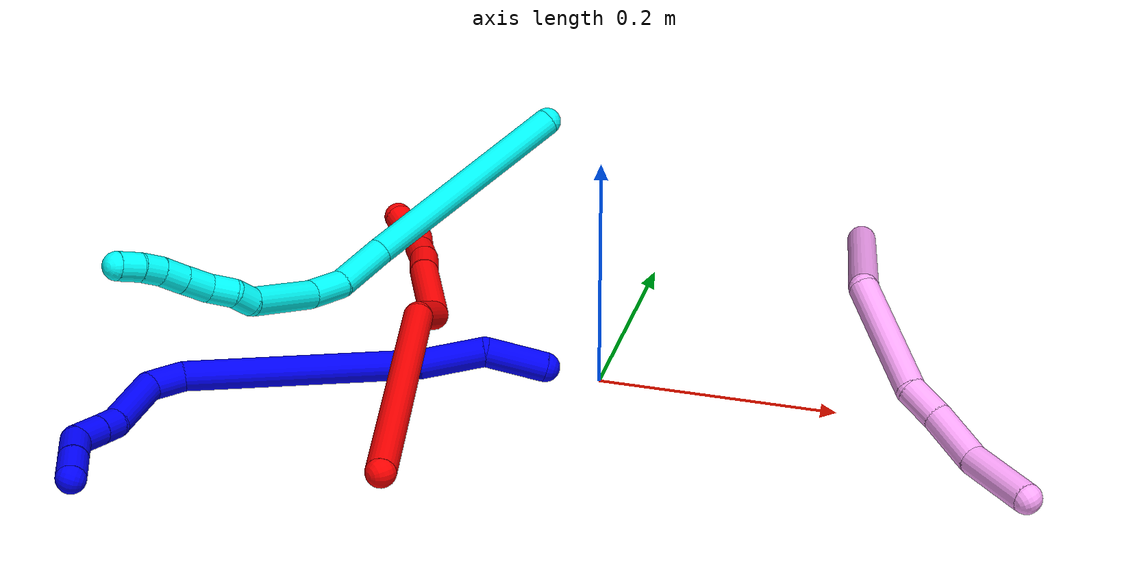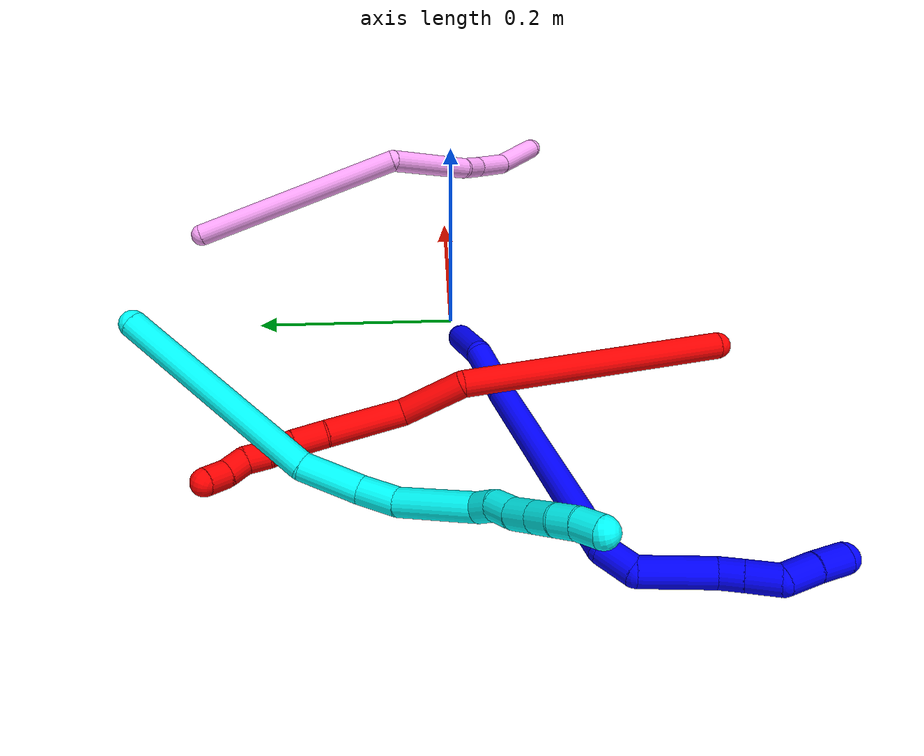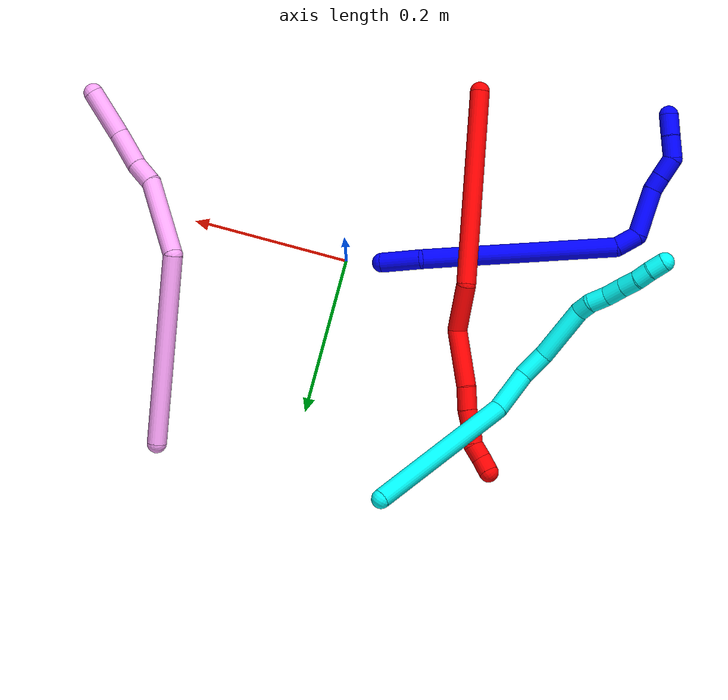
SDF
<sdf version="1.7">
 <world name="default">
  <plugin name="TubeGeneratorPlugin" filename="libtube_generator_plugin.so"/>
  <model name="photoneo_s_sensor">
   <static>1</static>
   <pose>0 0 2 1.57079 1.57079 3.14159</pose>
   <link name="link">
    <inertial><mass>0.1</mass></inertial>
    <sensor name="sensor" type="depth">
     <update_rate>30</update_rate>
     <camera>
      <horizontal_fov>1.22</horizontal_fov>
      <image><width>1920</width><height>1200</height><format>B8G8R8</format></image>
      <clip><near>0.1</near><far>4</far></clip>
      <depth_camera><output>points</output></depth_camera>
     </camera>
     <plugin name="camera_plugin" filename="libgazebo_ros_depth_camera.so">
      <baseline>0.2</baseline>
      <alwaysOn>1</alwaysOn>
      <updateRate>0.0</updateRate>
      <cameraName>camera_ir</cameraName>
      <imageTopicName>/camera/color/image_raw</imageTopicName>
      <cameraInfoTopicName>/camera/color/camera_info</cameraInfoTopicName>
      <depthImageTopicName>/camera/depth/image_raw</depthImageTopicName>
      <depthImageCameraInfoTopicName>/camera/depth/camera_info</depthImageCameraInfoTopicName>
      <pointCloudTopicName>/camera/depth/points</pointCloudTopicName>
      <frameName>fr_optical</frameName>
      <pointCloudCutoff>0.1</pointCloudCutoff>
      <pointCloudCutoffMax>2.0</pointCloudCutoffMax>
      <distortionK1>0</distortionK1>
      <distortionK2>0</distortionK2>
      <distortionK3>0</distortionK3>
      <distortionT1>0</distortionT1>
      <distortionT2>0</distortionT2>
      <CxPrime>0</CxPrime>
      <Cx>0</Cx>
      <Cy>0</Cy>
      <focalLength>0</focalLength>
      <hackBaseline>0</hackBaseline>
     </plugin>
    </sensor>
   </link>
  </model>
  <gravity>0 0 -9.8</gravity>
  <magnetic_field>6e-06 2.3e-05 -4.2e-05</magnetic_field>
  <atmosphere type="adiabatic"/>
  <physics name="default_physics" default="0" type="ode">
   <max_step_size>0.003</max_step_size>
   <real_time_factor>1</real_time_factor>
   <real_time_update_rate>1000</real_time_update_rate>
   <max_contacts>10000</max_contacts>
   <ode>
    <solver>
     <type>quick</type>
     <iters>100</iters>
     <sor>1.3</sor>
     <use_dynamic_moi_rescaling>0</use_dynamic_moi_rescaling>
    </solver>
    <constraints>
     <contact_max_correcting_vel>0</contact_max_correcting_vel>
     <contact_surface_layer>0.001</contact_surface_layer>
     <cfm>0</cfm>
     <erp>0.2</erp>
    </constraints>
   </ode>
  </physics>
  <scene><ambient>0.4 0.4 0.4 1</ambient><background>0.7 0.7 0.7 1</background><shadows>0</shadows></scene>
  <audio><device>default</device></audio>
  <spherical_coordinates>
   <surface_model>EARTH_WGS84</surface_model>
   <latitude_deg>0</latitude_deg>
   <longitude_deg>0</longitude_deg>
   <elevation>0</elevation>
   <heading_deg>0</heading_deg>
  </spherical_coordinates>
  <model name="bin">
   <static>1</static>
   <link name="bottom">
    <collision name="collision-bottom">
     <pose>0 0 -0.01 0 -0 0</pose>
     <geometry><box><size>0.8 0.6 0.02</size></box></geometry>
     <surface>
      <friction><ode><mu>100</mu><mu2>100</mu2></ode></friction>
      <contact><collide_bitmask>65535</collide_bitmask></contact>
     </surface>
    </collision>
   </link>
   <link name="west_wall">
    <collision name="collision-west_wall">
     <pose>-0.41 0 0.1 0 -0 0</pose>
     <geometry><box><size>0.02 0.6 0.2</size></box></geometry>
     <surface>
      <friction><ode><mu>100</mu><mu2>100</mu2></ode></friction>
      <contact><collide_bitmask>65535</collide_bitmask></contact>
     </surface>
    </collision>
   </link>
   <link name="east_wall">
    <collision name="collision-east_wall">
     <pose>0.41 0 0.1 0 -0 0</pose>
     <geometry><box><size>0.02 0.6 0.2</size></box></geometry>
     <surface>
      <friction><ode><mu>100</mu><mu2>100</mu2></ode></friction>
      <contact><collide_bitmask>65535</collide_bitmask></contact>
     </surface>
    </collision>
   </link>
   <link name="south_wall">
    <collision name="collision-south_wall">
     <pose>0 -0.31 0.1 0 -0 0</pose>
     <geometry><box><size>0.8 0.02 0.2</size></box></geometry>
     <surface>
      <friction><ode><mu>100</mu><mu2>100</mu2></ode></friction>
      <contact><collide_bitmask>65535</collide_bitmask></contact>
     </surface>
    </collision>
   </link>
   <link name="north_wall">
    <collision name="collision-north_wall">
     <pose>0 0.31 0.1 0 -0 0</pose>
     <geometry><box><size>0.8 0.02 0.2</size></box></geometry>
     <surface>
      <friction><ode><mu>100</mu><mu2>100</mu2></ode></friction>
      <contact><collide_bitmask>65535</collide_bitmask></contact>
     </surface>
    </collision>
   </link>
  </model>
  <model name="1">
   <static>0</static>
   <link name="1">
    <collision name="collision-cylinder-e_1_1_4">
     <pose>-0.0007 -0.003578 0.025909 0.137225 -0.026767 -0.00184</pose>
     <geometry><cylinder><radius>0.0125</radius><length>0.052329</length></cylinder></geometry>
     <surface>
      <friction><ode><mu>1.16</mu><mu2>1.16</mu2><slip1>0</slip1><slip2>0</slip2></ode></friction>
      <contact><ode><kp>1e+06</kp><kd>1</kd><max_vel>0</max_vel><min_depth>0.001</min_depth></ode></contact>
     </surface>
    </collision>
    <visual name="visual-cylinder-e_1_1_4">
     <pose>-0.0007 -0.003578 0.025909 0.137225 -0.026767 -0.00184</pose>
     <geometry><cylinder><radius>0.0125</radius><length>0.052329</length></cylinder></geometry>
     <material><ambient>0 0 1 1</ambient></material>
    </visual>
    <collision name="collision-cylinder-e_2_4_5">
     <pose>-0.014833 -0.009905 0.075856 0.113865 -0.506813 -0.029518</pose>
     <geometry><cylinder><radius>0.0125</radius><length>0.055345</length></cylinder></geometry>
     <surface>
      <friction><ode><mu>1.16</mu><mu2>1.16</mu2><slip1>0</slip1><slip2>0</slip2></ode></friction>
      <contact><ode><kp>1e+06</kp><kd>1</kd><max_vel>0</max_vel><min_depth>0.001</min_depth></ode></contact>
     </surface>
    </collision>
    <visual name="visual-cylinder-e_2_4_5">
     <pose>-0.014833 -0.009905 0.075856 0.113865 -0.506813 -0.029518</pose>
     <geometry><cylinder><radius>0.0125</radius><length>0.055345</length></cylinder></geometry>
     <material><ambient>0 0 1 1</ambient></material>
    </visual>
    <collision name="collision-cylinder-e_3_5_6">
     <pose>-0.062302 -0.022801 0.190779 0.111194 -0.356309 -0.020042</pose>
     <geometry><cylinder><radius>0.0125</radius><length>0.19516</length></cylinder></geometry>
     <surface>
      <friction><ode><mu>1.16</mu><mu2>1.16</mu2><slip1>0</slip1><slip2>0</slip2></ode></friction>
      <contact><ode><kp>1e+06</kp><kd>1</kd><max_vel>0</max_vel><min_depth>0.001</min_depth></ode></contact>
     </surface>
    </collision>
    <visual name="visual-cylinder-e_3_5_6">
     <pose>-0.062302 -0.022801 0.190779 0.111194 -0.356309 -0.020042</pose>
     <geometry><cylinder><radius>0.0125</radius><length>0.19516</length></cylinder></geometry>
     <material><ambient>0 0 1 1</ambient></material>
    </visual>
    <collision name="collision-cylinder-e_4_6_7">
     <pose>-0.102203 -0.040912 0.29355 0.590315 -0.388986 -0.119638</pose>
     <geometry><cylinder><radius>0.0125</radius><length>0.030923</length></cylinder></geometry>
     <surface>
      <friction><ode><mu>1.16</mu><mu2>1.16</mu2><slip1>0</slip1><slip2>0</slip2></ode></friction>
      <contact><ode><kp>1e+06</kp><kd>1</kd><max_vel>0</max_vel><min_depth>0.001</min_depth></ode></contact>
     </surface>
    </collision>
    <visual name="visual-cylinder-e_4_6_7">
     <pose>-0.102203 -0.040912 0.29355 0.590315 -0.388986 -0.119638</pose>
     <geometry><cylinder><radius>0.0125</radius><length>0.030923</length></cylinder></geometry>
     <material><ambient>0 0 1 1</ambient></material>
    </visual>
    <collision name="collision-cylinder-e_5_7_8">
     <pose>-0.115722 -0.078263 0.311901 1.35423 -0.249125 -0.200638</pose>
     <geometry><cylinder><radius>0.0125</radius><length>0.062097</length></cylinder></geometry>
     <surface>
      <friction><ode><mu>1.16</mu><mu2>1.16</mu2><slip1>0</slip1><slip2>0</slip2></ode></friction>
      <contact><ode><kp>1e+06</kp><kd>1</kd><max_vel>0</max_vel><min_depth>0.001</min_depth></ode></contact>
     </surface>
    </collision>
    <visual name="visual-cylinder-e_5_7_8">
     <pose>-0.115722 -0.078263 0.311901 1.35423 -0.249125 -0.200638</pose>
     <geometry><cylinder><radius>0.0125</radius><length>0.062097</length></cylinder></geometry>
     <material><ambient>0 0 1 1</ambient></material>
    </visual>
    <collision name="collision-cylinder-e_6_8_9">
     <pose>-0.124969 -0.116473 0.323179 1.0715 -0.157003 -0.093332</pose>
     <geometry><cylinder><radius>0.0125</radius><length>0.02035</length></cylinder></geometry>
     <surface>
      <friction><ode><mu>1.16</mu><mu2>1.16</mu2><slip1>0</slip1><slip2>0</slip2></ode></friction>
      <contact><ode><kp>1e+06</kp><kd>1</kd><max_vel>0</max_vel><min_depth>0.001</min_depth></ode></contact>
     </surface>
    </collision>
    <visual name="visual-cylinder-e_6_8_9">
     <pose>-0.124969 -0.116473 0.323179 1.0715 -0.157003 -0.093332</pose>
     <geometry><cylinder><radius>0.0125</radius><length>0.02035</length></cylinder></geometry>
     <material><ambient>0 0 1 1</ambient></material>
    </visual>
    <collision name="collision-cylinder-e_7_9_10">
     <pose>-0.12866 -0.136911 0.334645 1.05056 -0.155621 -0.090318</pose>
     <geometry><cylinder><radius>0.0125</radius><length>0.027098</length></cylinder></geometry>
     <surface>
      <friction><ode><mu>1.16</mu><mu2>1.16</mu2><slip1>0</slip1><slip2>0</slip2></ode></friction>
      <contact><ode><kp>1e+06</kp><kd>1</kd><max_vel>0</max_vel><min_depth>0.001</min_depth></ode></contact>
     </surface>
    </collision>
    <visual name="visual-cylinder-e_7_9_10">
     <pose>-0.12866 -0.136911 0.334645 1.05056 -0.155621 -0.090318</pose>
     <geometry><cylinder><radius>0.0125</radius><length>0.027098</length></cylinder></geometry>
     <material><ambient>0 0 1 1</ambient></material>
    </visual>
    <collision name="collision-cylinder-e_8_10_11">
     <pose>-0.132132 -0.162719 0.338858 1.74103 -0.095012 -0.112703</pose>
     <geometry><cylinder><radius>0.0125</radius><length>0.028935</length></cylinder></geometry>
     <surface>
      <friction><ode><mu>1.16</mu><mu2>1.16</mu2><slip1>0</slip1><slip2>0</slip2></ode></friction>
      <contact><ode><kp>1e+06</kp><kd>1</kd><max_vel>0</max_vel><min_depth>0.001</min_depth></ode></contact>
     </surface>
    </collision>
    <visual name="visual-cylinder-e_8_10_11">
     <pose>-0.132132 -0.162719 0.338858 1.74103 -0.095012 -0.112703</pose>
     <geometry><cylinder><radius>0.0125</radius><length>0.028935</length></cylinder></geometry>
     <material><ambient>0 0 1 1</ambient></material>
    </visual>
    <collision name="collision-cylinder-e_9_11_2">
     <pose>-0.135926 -0.190356 0.333943 1.75294 -0.17536 -0.210371</pose>
     <geometry><cylinder><radius>0.0125</radius><length>0.027763</length></cylinder></geometry>
     <surface>
      <friction><ode><mu>1.16</mu><mu2>1.16</mu2><slip1>0</slip1><slip2>0</slip2></ode></friction>
      <contact><ode><kp>1e+06</kp><kd>1</kd><max_vel>0</max_vel><min_depth>0.001</min_depth></ode></contact>
     </surface>
    </collision>
    <visual name="visual-cylinder-e_9_11_2">
     <pose>-0.135926 -0.190356 0.333943 1.75294 -0.17536 -0.210371</pose>
     <geometry><cylinder><radius>0.0125</radius><length>0.027763</length></cylinder></geometry>
     <material><ambient>0 0 1 1</ambient></material>
    </visual>
    <collision name="collision-sphere-2">
     <pose>-0.138348 -0.203798 0.331467 0 -0 0</pose>
     <geometry><sphere><radius>0.0125</radius></sphere></geometry>
     <surface>
      <friction><ode><mu>1.16</mu><mu2>1.16</mu2><slip1>0</slip1><slip2>0</slip2></ode></friction>
      <contact><ode><kp>1e+06</kp><kd>1</kd><max_vel>0</max_vel><min_depth>0.001</min_depth></ode></contact>
     </surface>
    </collision>
    <visual name="visual-sphere-2">
     <pose>-0.138348 -0.203798 0.331467 0 -0 0</pose>
     <geometry><sphere><radius>0.0125</radius></sphere></geometry>
     <material><ambient>0 0 1 1</ambient></material>
    </visual>
    <collision name="collision-sphere-11">
     <pose>-0.133505 -0.176913 0.336419 0 -0 0</pose>
     <geometry><sphere><radius>0.0125</radius></sphere></geometry>
     <surface>
      <friction><ode><mu>1.16</mu><mu2>1.16</mu2><slip1>0</slip1><slip2>0</slip2></ode></friction>
      <contact><ode><kp>1e+06</kp><kd>1</kd><max_vel>0</max_vel><min_depth>0.001</min_depth></ode></contact>
     </surface>
    </collision>
    <visual name="visual-sphere-11">
     <pose>-0.133505 -0.176913 0.336419 0 -0 0</pose>
     <geometry><sphere><radius>0.0125</radius></sphere></geometry>
     <material><ambient>0 0 1 1</ambient></material>
    </visual>
    <collision name="collision-sphere-10">
     <pose>-0.13076 -0.148526 0.341298 0 -0 0</pose>
     <geometry><sphere><radius>0.0125</radius></sphere></geometry>
     <surface>
      <friction><ode><mu>1.16</mu><mu2>1.16</mu2><slip1>0</slip1><slip2>0</slip2></ode></friction>
      <contact><ode><kp>1e+06</kp><kd>1</kd><max_vel>0</max_vel><min_depth>0.001</min_depth></ode></contact>
     </surface>
    </collision>
    <visual name="visual-sphere-10">
     <pose>-0.13076 -0.148526 0.341298 0 -0 0</pose>
     <geometry><sphere><radius>0.0125</radius></sphere></geometry>
     <material><ambient>0 0 1 1</ambient></material>
    </visual>
    <collision name="collision-sphere-9">
     <pose>-0.126559 -0.125296 0.327991 0 -0 0</pose>
     <geometry><sphere><radius>0.0125</radius></sphere></geometry>
     <surface>
      <friction><ode><mu>1.16</mu><mu2>1.16</mu2><slip1>0</slip1><slip2>0</slip2></ode></friction>
      <contact><ode><kp>1e+06</kp><kd>1</kd><max_vel>0</max_vel><min_depth>0.001</min_depth></ode></contact>
     </surface>
    </collision>
    <visual name="visual-sphere-9">
     <pose>-0.126559 -0.125296 0.327991 0 -0 0</pose>
     <geometry><sphere><radius>0.0125</radius></sphere></geometry>
     <material><ambient>0 0 1 1</ambient></material>
    </visual>
    <collision name="collision-sphere-4">
     <pose>-0.001401 -0.007156 0.051818 0 -0 0</pose>
     <geometry><sphere><radius>0.0125</radius></sphere></geometry>
     <surface>
      <friction><ode><mu>1.16</mu><mu2>1.16</mu2><slip1>0</slip1><slip2>0</slip2></ode></friction>
      <contact><ode><kp>1e+06</kp><kd>1</kd><max_vel>0</max_vel><min_depth>0.001</min_depth></ode></contact>
     </surface>
    </collision>
    <visual name="visual-sphere-4">
     <pose>-0.001401 -0.007156 0.051818 0 -0 0</pose>
     <geometry><sphere><radius>0.0125</radius></sphere></geometry>
     <material><ambient>0 0 1 1</ambient></material>
    </visual>
    <collision name="collision-sphere-1">
     <geometry><sphere><radius>0.0125</radius></sphere></geometry>
     <surface>
      <friction><ode><mu>1.16</mu><mu2>1.16</mu2><slip1>0</slip1><slip2>0</slip2></ode></friction>
      <contact><ode><kp>1e+06</kp><kd>1</kd><max_vel>0</max_vel><min_depth>0.001</min_depth></ode></contact>
     </surface>
    </collision>
    <visual name="visual-sphere-1">
     <geometry><sphere><radius>0.0125</radius></sphere></geometry>
     <material><ambient>0 0 1 1</ambient></material>
    </visual>
    <collision name="collision-sphere-8">
     <pose>-0.123378 -0.10765 0.318367 0 -0 0</pose>
     <geometry><sphere><radius>0.0125</radius></sphere></geometry>
     <surface>
      <friction><ode><mu>1.16</mu><mu2>1.16</mu2><slip1>0</slip1><slip2>0</slip2></ode></friction>
      <contact><ode><kp>1e+06</kp><kd>1</kd><max_vel>0</max_vel><min_depth>0.001</min_depth></ode></contact>
     </surface>
    </collision>
    <visual name="visual-sphere-8">
     <pose>-0.123378 -0.10765 0.318367 0 -0 0</pose>
     <geometry><sphere><radius>0.0125</radius></sphere></geometry>
     <material><ambient>0 0 1 1</ambient></material>
    </visual>
    <collision name="collision-sphere-5">
     <pose>-0.028265 -0.012654 0.099893 0 -0 0</pose>
     <geometry><sphere><radius>0.0125</radius></sphere></geometry>
     <surface>
      <friction><ode><mu>1.16</mu><mu2>1.16</mu2><slip1>0</slip1><slip2>0</slip2></ode></friction>
      <contact><ode><kp>1e+06</kp><kd>1</kd><max_vel>0</max_vel><min_depth>0.001</min_depth></ode></contact>
     </surface>
    </collision>
    <visual name="visual-sphere-5">
     <pose>-0.028265 -0.012654 0.099893 0 -0 0</pose>
     <geometry><sphere><radius>0.0125</radius></sphere></geometry>
     <material><ambient>0 0 1 1</ambient></material>
    </visual>
    <collision name="collision-sphere-6">
     <pose>-0.09634 -0.032949 0.281665 0 -0 0</pose>
     <geometry><sphere><radius>0.0125</radius></sphere></geometry>
     <surface>
      <friction><ode><mu>1.16</mu><mu2>1.16</mu2><slip1>0</slip1><slip2>0</slip2></ode></friction>
      <contact><ode><kp>1e+06</kp><kd>1</kd><max_vel>0</max_vel><min_depth>0.001</min_depth></ode></contact>
     </surface>
    </collision>
    <visual name="visual-sphere-6">
     <pose>-0.09634 -0.032949 0.281665 0 -0 0</pose>
     <geometry><sphere><radius>0.0125</radius></sphere></geometry>
     <material><ambient>0 0 1 1</ambient></material>
    </visual>
    <collision name="collision-sphere-7">
     <pose>-0.108067 -0.048876 0.305436 0 -0 0</pose>
     <geometry><sphere><radius>0.0125</radius></sphere></geometry>
     <surface>
      <friction><ode><mu>1.16</mu><mu2>1.16</mu2><slip1>0</slip1><slip2>0</slip2></ode></friction>
      <contact><ode><kp>1e+06</kp><kd>1</kd><max_vel>0</max_vel><min_depth>0.001</min_depth></ode></contact>
     </surface>
    </collision>
    <visual name="visual-sphere-7">
     <pose>-0.108067 -0.048876 0.305436 0 -0 0</pose>
     <geometry><sphere><radius>0.0125</radius></sphere></geometry>
     <material><ambient>0 0 1 1</ambient></material>
    </visual>
    <inertial>
     <pose>-0.073979 -0.054768 0.211906 0 -0 0</pose>
     <mass>0.5</mass>
     <inertia>
      <ixx>0.000621</ixx>
      <ixy>0</ixy>
      <ixz>0</ixz>
      <iyy>0.00063</iyy>
      <iyz>0</iyz>
      <izz>0.000363</izz>
     </inertia>
    </inertial>
   </link>
   <pose>-0.044548 -0.008407 0.011495 -0.524027 -1.20967 0.712815</pose>
  </model>
  <model name="2">
   <static>0</static>
   <link name="2">
    <collision name="collision-cylinder-e_1_1_4">
     <pose>-0.070728 0.057997 0.084281 -0.602719 -0.604878 0.193358</pose>
     <geometry><cylinder><radius>0.0125</radius><length>0.248751</length></cylinder></geometry>
     <surface>
      <friction><ode><mu>1.16</mu><mu2>1.16</mu2><slip1>0</slip1><slip2>0</slip2></ode></friction>
      <contact><ode><kp>1e+06</kp><kd>1</kd><max_vel>0</max_vel><min_depth>0.001</min_depth></ode></contact>
     </surface>
    </collision>
    <visual name="visual-cylinder-e_1_1_4">
     <pose>-0.070728 0.057997 0.084281 -0.602719 -0.604878 0.193358</pose>
     <geometry><cylinder><radius>0.0125</radius><length>0.248751</length></cylinder></geometry>
     <material><ambient>1 0 0 1</ambient></material>
    </visual>
    <collision name="collision-cylinder-e_2_4_5">
     <pose>-0.146294 0.138294 0.18975 -0.810955 -0.156026 0.067088</pose>
     <geometry><cylinder><radius>0.0125</radius><length>0.062279</length></cylinder></geometry>
     <surface>
      <friction><ode><mu>1.16</mu><mu2>1.16</mu2><slip1>0</slip1><slip2>0</slip2></ode></friction>
      <contact><ode><kp>1e+06</kp><kd>1</kd><max_vel>0</max_vel><min_depth>0.001</min_depth></ode></contact>
     </surface>
    </collision>
    <visual name="visual-cylinder-e_2_4_5">
     <pose>-0.146294 0.138294 0.18975 -0.810955 -0.156026 0.067088</pose>
     <geometry><cylinder><radius>0.0125</radius><length>0.062279</length></cylinder></geometry>
     <material><ambient>1 0 0 1</ambient></material>
    </visual>
    <collision name="collision-cylinder-e_3_5_6">
     <pose>-0.177019 0.179708 0.22927 -0.806315 -0.773994 0.344216</pose>
     <geometry><cylinder><radius>0.0125</radius><length>0.074066</length></cylinder></geometry>
     <surface>
      <friction><ode><mu>1.16</mu><mu2>1.16</mu2><slip1>0</slip1><slip2>0</slip2></ode></friction>
      <contact><ode><kp>1e+06</kp><kd>1</kd><max_vel>0</max_vel><min_depth>0.001</min_depth></ode></contact>
     </surface>
    </collision>
    <visual name="visual-cylinder-e_3_5_6">
     <pose>-0.177019 0.179708 0.22927 -0.806315 -0.773994 0.344216</pose>
     <geometry><cylinder><radius>0.0125</radius><length>0.074066</length></cylinder></geometry>
     <material><ambient>1 0 0 1</ambient></material>
    </visual>
    <collision name="collision-cylinder-e_4_6_7">
     <pose>-0.211292 0.20713 0.256185 -0.769055 -0.612128 0.254367</pose>
     <geometry><cylinder><radius>0.0125</radius><length>0.029194</length></cylinder></geometry>
     <surface>
      <friction><ode><mu>1.16</mu><mu2>1.16</mu2><slip1>0</slip1><slip2>0</slip2></ode></friction>
      <contact><ode><kp>1e+06</kp><kd>1</kd><max_vel>0</max_vel><min_depth>0.001</min_depth></ode></contact>
     </surface>
    </collision>
    <visual name="visual-cylinder-e_4_6_7">
     <pose>-0.211292 0.20713 0.256185 -0.769055 -0.612128 0.254367</pose>
     <geometry><cylinder><radius>0.0125</radius><length>0.029194</length></cylinder></geometry>
     <material><ambient>1 0 0 1</ambient></material>
    </visual>
    <collision name="collision-cylinder-e_5_7_8">
     <pose>-0.227239 0.222971 0.269939 -0.969266 -0.691264 0.374734</pose>
     <geometry><cylinder><radius>0.0125</radius><length>0.023715</length></cylinder></geometry>
     <surface>
      <friction><ode><mu>1.16</mu><mu2>1.16</mu2><slip1>0</slip1><slip2>0</slip2></ode></friction>
      <contact><ode><kp>1e+06</kp><kd>1</kd><max_vel>0</max_vel><min_depth>0.001</min_depth></ode></contact>
     </surface>
    </collision>
    <visual name="visual-cylinder-e_5_7_8">
     <pose>-0.227239 0.222971 0.269939 -0.969266 -0.691264 0.374734</pose>
     <geometry><cylinder><radius>0.0125</radius><length>0.023715</length></cylinder></geometry>
     <material><ambient>1 0 0 1</ambient></material>
    </visual>
    <collision name="collision-cylinder-e_6_8_9">
     <pose>-0.241766 0.23581 0.280841 -0.746921 -0.728343 0.296533</pose>
     <geometry><cylinder><radius>0.0125</radius><length>0.020935</length></cylinder></geometry>
     <surface>
      <friction><ode><mu>1.16</mu><mu2>1.16</mu2><slip1>0</slip1><slip2>0</slip2></ode></friction>
      <contact><ode><kp>1e+06</kp><kd>1</kd><max_vel>0</max_vel><min_depth>0.001</min_depth></ode></contact>
     </surface>
    </collision>
    <visual name="visual-cylinder-e_6_8_9">
     <pose>-0.241766 0.23581 0.280841 -0.746921 -0.728343 0.296533</pose>
     <geometry><cylinder><radius>0.0125</radius><length>0.020935</length></cylinder></geometry>
     <material><ambient>1 0 0 1</ambient></material>
    </visual>
    <collision name="collision-cylinder-e_7_9_10">
     <pose>-0.256072 0.247887 0.287891 -1.37849 -0.816375 0.684717</pose>
     <geometry><cylinder><radius>0.0125</radius><length>0.020142</length></cylinder></geometry>
     <surface>
      <friction><ode><mu>1.16</mu><mu2>1.16</mu2><slip1>0</slip1><slip2>0</slip2></ode></friction>
      <contact><ode><kp>1e+06</kp><kd>1</kd><max_vel>0</max_vel><min_depth>0.001</min_depth></ode></contact>
     </surface>
    </collision>
    <visual name="visual-cylinder-e_7_9_10">
     <pose>-0.256072 0.247887 0.287891 -1.37849 -0.816375 0.684717</pose>
     <geometry><cylinder><radius>0.0125</radius><length>0.020142</length></cylinder></geometry>
     <material><ambient>1 0 0 1</ambient></material>
    </visual>
    <collision name="collision-cylinder-e_8_10_2">
     <pose>-0.272608 0.25923 0.291181 -1.16386 -1.07455 0.747089</pose>
     <geometry><cylinder><radius>0.0125</radius><length>0.020918</length></cylinder></geometry>
     <surface>
      <friction><ode><mu>1.16</mu><mu2>1.16</mu2><slip1>0</slip1><slip2>0</slip2></ode></friction>
      <contact><ode><kp>1e+06</kp><kd>1</kd><max_vel>0</max_vel><min_depth>0.001</min_depth></ode></contact>
     </surface>
    </collision>
    <visual name="visual-cylinder-e_8_10_2">
     <pose>-0.272608 0.25923 0.291181 -1.16386 -1.07455 0.747089</pose>
     <geometry><cylinder><radius>0.0125</radius><length>0.020918</length></cylinder></geometry>
     <material><ambient>1 0 0 1</ambient></material>
    </visual>
    <collision name="collision-sphere-2">
     <pose>-0.281805 0.263803 0.293152 0 -0 0</pose>
     <geometry><sphere><radius>0.0125</radius></sphere></geometry>
     <surface>
      <friction><ode><mu>1.16</mu><mu2>1.16</mu2><slip1>0</slip1><slip2>0</slip2></ode></friction>
      <contact><ode><kp>1e+06</kp><kd>1</kd><max_vel>0</max_vel><min_depth>0.001</min_depth></ode></contact>
     </surface>
    </collision>
    <visual name="visual-sphere-2">
     <pose>-0.281805 0.263803 0.293152 0 -0 0</pose>
     <geometry><sphere><radius>0.0125</radius></sphere></geometry>
     <material><ambient>1 0 0 1</ambient></material>
    </visual>
    <collision name="collision-sphere-10">
     <pose>-0.26341 0.254657 0.28921 0 -0 0</pose>
     <geometry><sphere><radius>0.0125</radius></sphere></geometry>
     <surface>
      <friction><ode><mu>1.16</mu><mu2>1.16</mu2><slip1>0</slip1><slip2>0</slip2></ode></friction>
      <contact><ode><kp>1e+06</kp><kd>1</kd><max_vel>0</max_vel><min_depth>0.001</min_depth></ode></contact>
     </surface>
    </collision>
    <visual name="visual-sphere-10">
     <pose>-0.26341 0.254657 0.28921 0 -0 0</pose>
     <geometry><sphere><radius>0.0125</radius></sphere></geometry>
     <material><ambient>1 0 0 1</ambient></material>
    </visual>
    <collision name="collision-sphere-9">
     <pose>-0.248734 0.241117 0.286573 0 -0 0</pose>
     <geometry><sphere><radius>0.0125</radius></sphere></geometry>
     <surface>
      <friction><ode><mu>1.16</mu><mu2>1.16</mu2><slip1>0</slip1><slip2>0</slip2></ode></friction>
      <contact><ode><kp>1e+06</kp><kd>1</kd><max_vel>0</max_vel><min_depth>0.001</min_depth></ode></contact>
     </surface>
    </collision>
    <visual name="visual-sphere-9">
     <pose>-0.248734 0.241117 0.286573 0 -0 0</pose>
     <geometry><sphere><radius>0.0125</radius></sphere></geometry>
     <material><ambient>1 0 0 1</ambient></material>
    </visual>
    <collision name="collision-sphere-4">
     <pose>-0.141455 0.115993 0.168562 0 -0 0</pose>
     <geometry><sphere><radius>0.0125</radius></sphere></geometry>
     <surface>
      <friction><ode><mu>1.16</mu><mu2>1.16</mu2><slip1>0</slip1><slip2>0</slip2></ode></friction>
      <contact><ode><kp>1e+06</kp><kd>1</kd><max_vel>0</max_vel><min_depth>0.001</min_depth></ode></contact>
     </surface>
    </collision>
    <visual name="visual-sphere-4">
     <pose>-0.141455 0.115993 0.168562 0 -0 0</pose>
     <geometry><sphere><radius>0.0125</radius></sphere></geometry>
     <material><ambient>1 0 0 1</ambient></material>
    </visual>
    <collision name="collision-sphere-1">
     <geometry><sphere><radius>0.0125</radius></sphere></geometry>
     <surface>
      <friction><ode><mu>1.16</mu><mu2>1.16</mu2><slip1>0</slip1><slip2>0</slip2></ode></friction>
      <contact><ode><kp>1e+06</kp><kd>1</kd><max_vel>0</max_vel><min_depth>0.001</min_depth></ode></contact>
     </surface>
    </collision>
    <visual name="visual-sphere-1">
     <geometry><sphere><radius>0.0125</radius></sphere></geometry>
     <material><ambient>1 0 0 1</ambient></material>
    </visual>
    <collision name="collision-sphere-8">
     <pose>-0.234799 0.230503 0.275109 0 -0 0</pose>
     <geometry><sphere><radius>0.0125</radius></sphere></geometry>
     <surface>
      <friction><ode><mu>1.16</mu><mu2>1.16</mu2><slip1>0</slip1><slip2>0</slip2></ode></friction>
      <contact><ode><kp>1e+06</kp><kd>1</kd><max_vel>0</max_vel><min_depth>0.001</min_depth></ode></contact>
     </surface>
    </collision>
    <visual name="visual-sphere-8">
     <pose>-0.234799 0.230503 0.275109 0 -0 0</pose>
     <geometry><sphere><radius>0.0125</radius></sphere></geometry>
     <material><ambient>1 0 0 1</ambient></material>
    </visual>
    <collision name="collision-sphere-5">
     <pose>-0.151133 0.160594 0.210939 0 -0 0</pose>
     <geometry><sphere><radius>0.0125</radius></sphere></geometry>
     <surface>
      <friction><ode><mu>1.16</mu><mu2>1.16</mu2><slip1>0</slip1><slip2>0</slip2></ode></friction>
      <contact><ode><kp>1e+06</kp><kd>1</kd><max_vel>0</max_vel><min_depth>0.001</min_depth></ode></contact>
     </surface>
    </collision>
    <visual name="visual-sphere-5">
     <pose>-0.151133 0.160594 0.210939 0 -0 0</pose>
     <geometry><sphere><radius>0.0125</radius></sphere></geometry>
     <material><ambient>1 0 0 1</ambient></material>
    </visual>
    <collision name="collision-sphere-6">
     <pose>-0.202905 0.198822 0.2476 0 -0 0</pose>
     <geometry><sphere><radius>0.0125</radius></sphere></geometry>
     <surface>
      <friction><ode><mu>1.16</mu><mu2>1.16</mu2><slip1>0</slip1><slip2>0</slip2></ode></friction>
      <contact><ode><kp>1e+06</kp><kd>1</kd><max_vel>0</max_vel><min_depth>0.001</min_depth></ode></contact>
     </surface>
    </collision>
    <visual name="visual-sphere-6">
     <pose>-0.202905 0.198822 0.2476 0 -0 0</pose>
     <geometry><sphere><radius>0.0125</radius></sphere></geometry>
     <material><ambient>1 0 0 1</ambient></material>
    </visual>
    <collision name="collision-sphere-7">
     <pose>-0.21968 0.215439 0.264769 0 -0 0</pose>
     <geometry><sphere><radius>0.0125</radius></sphere></geometry>
     <surface>
      <friction><ode><mu>1.16</mu><mu2>1.16</mu2><slip1>0</slip1><slip2>0</slip2></ode></friction>
      <contact><ode><kp>1e+06</kp><kd>1</kd><max_vel>0</max_vel><min_depth>0.001</min_depth></ode></contact>
     </surface>
    </collision>
    <visual name="visual-sphere-7">
     <pose>-0.21968 0.215439 0.264769 0 -0 0</pose>
     <geometry><sphere><radius>0.0125</radius></sphere></geometry>
     <material><ambient>1 0 0 1</ambient></material>
    </visual>
    <inertial>
     <pose>-0.134589 0.126073 0.162826 0 -0 0</pose>
     <mass>0.5</mass>
     <inertia>
      <ixx>0.001292</ixx>
      <ixy>0</ixy>
      <ixz>0</ixz>
      <iyy>0.001416</iyy>
      <iyz>0</iyz>
      <izz>0.00015</izz>
     </inertia>
    </inertial>
   </link>
   <pose>-0.109008 -0.249101 0.0422 -1.57898 0.689537 -0.642217</pose>
  </model>
  <model name="3">
   <static>0</static>
   <link name="3">
    <collision name="collision-cylinder-e_1_1_4">
     <pose>-0.049879 -0.049532 -0.073206 2.54673 -0.513768 -1.41708</pose>
     <geometry><cylinder><radius>0.0125</radius><length>0.202983</length></cylinder></geometry>
     <surface>
      <friction><ode><mu>1.16</mu><mu2>1.16</mu2><slip1>0</slip1><slip2>0</slip2></ode></friction>
      <contact><ode><kp>1e+06</kp><kd>1</kd><max_vel>0</max_vel><min_depth>0.001</min_depth></ode></contact>
     </surface>
    </collision>
    <visual name="visual-cylinder-e_1_1_4">
     <pose>-0.049879 -0.049532 -0.073206 2.54673 -0.513768 -1.41708</pose>
     <geometry><cylinder><radius>0.0125</radius><length>0.202983</length></cylinder></geometry>
     <material><ambient>0.003922 1 0.996078 1</ambient></material>
    </visual>
    <collision name="collision-cylinder-e_2_4_5">
     <pose>-0.11189 -0.105351 -0.170184 2.88307 -0.458336 -2.1248</pose>
     <geometry><cylinder><radius>0.0125</radius><length>0.054839</length></cylinder></geometry>
     <surface>
      <friction><ode><mu>1.16</mu><mu2>1.16</mu2><slip1>0</slip1><slip2>0</slip2></ode></friction>
      <contact><ode><kp>1e+06</kp><kd>1</kd><max_vel>0</max_vel><min_depth>0.001</min_depth></ode></contact>
     </surface>
    </collision>
    <visual name="visual-cylinder-e_2_4_5">
     <pose>-0.11189 -0.105351 -0.170184 2.88307 -0.458336 -2.1248</pose>
     <geometry><cylinder><radius>0.0125</radius><length>0.054839</length></cylinder></geometry>
     <material><ambient>0.003922 1 0.996078 1</ambient></material>
    </visual>
    <collision name="collision-cylinder-e_3_5_6">
     <pose>-0.126787 -0.116769 -0.211062 2.85018 -0.153567 -0.965736</pose>
     <geometry><cylinder><radius>0.0125</radius><length>0.036143</length></cylinder></geometry>
     <surface>
      <friction><ode><mu>1.16</mu><mu2>1.16</mu2><slip1>0</slip1><slip2>0</slip2></ode></friction>
      <contact><ode><kp>1e+06</kp><kd>1</kd><max_vel>0</max_vel><min_depth>0.001</min_depth></ode></contact>
     </surface>
    </collision>
    <visual name="visual-cylinder-e_3_5_6">
     <pose>-0.126787 -0.116769 -0.211062 2.85018 -0.153567 -0.965736</pose>
     <geometry><cylinder><radius>0.0125</radius><length>0.036143</length></cylinder></geometry>
     <material><ambient>0.003922 1 0.996078 1</ambient></material>
    </visual>
    <collision name="collision-cylinder-e_4_6_7">
     <pose>-0.129011 -0.126475 -0.264249 3.01546 0.014847 0.234039</pose>
     <geometry><cylinder><radius>0.0125</radius><length>0.072748</length></cylinder></geometry>
     <surface>
      <friction><ode><mu>1.16</mu><mu2>1.16</mu2><slip1>0</slip1><slip2>0</slip2></ode></friction>
      <contact><ode><kp>1e+06</kp><kd>1</kd><max_vel>0</max_vel><min_depth>0.001</min_depth></ode></contact>
     </surface>
    </collision>
    <visual name="visual-cylinder-e_4_6_7">
     <pose>-0.129011 -0.126475 -0.264249 3.01546 0.014847 0.234039</pose>
     <geometry><cylinder><radius>0.0125</radius><length>0.072748</length></cylinder></geometry>
     <material><ambient>0.003922 1 0.996078 1</ambient></material>
    </visual>
    <collision name="collision-cylinder-e_5_7_8">
     <pose>-0.123832 -0.13292 -0.309595 2.94244 0.456262 2.32886</pose>
     <geometry><cylinder><radius>0.0125</radius><length>0.021058</length></cylinder></geometry>
     <surface>
      <friction><ode><mu>1.16</mu><mu2>1.16</mu2><slip1>0</slip1><slip2>0</slip2></ode></friction>
      <contact><ode><kp>1e+06</kp><kd>1</kd><max_vel>0</max_vel><min_depth>0.001</min_depth></ode></contact>
     </surface>
    </collision>
    <visual name="visual-cylinder-e_5_7_8">
     <pose>-0.123832 -0.13292 -0.309595 2.94244 0.456262 2.32886</pose>
     <geometry><cylinder><radius>0.0125</radius><length>0.021058</length></cylinder></geometry>
     <material><ambient>0.003922 1 0.996078 1</ambient></material>
    </visual>
    <collision name="collision-cylinder-e_6_8_9">
     <pose>-0.115704 -0.140539 -0.328545 2.60585 0.300367 1.00774</pose>
     <geometry><cylinder><radius>0.0125</radius><length>0.023581</length></cylinder></geometry>
     <surface>
      <friction><ode><mu>1.16</mu><mu2>1.16</mu2><slip1>0</slip1><slip2>0</slip2></ode></friction>
      <contact><ode><kp>1e+06</kp><kd>1</kd><max_vel>0</max_vel><min_depth>0.001</min_depth></ode></contact>
     </surface>
    </collision>
    <visual name="visual-cylinder-e_6_8_9">
     <pose>-0.115704 -0.140539 -0.328545 2.60585 0.300367 1.00774</pose>
     <geometry><cylinder><radius>0.0125</radius><length>0.023581</length></cylinder></geometry>
     <material><ambient>0.003922 1 0.996078 1</ambient></material>
    </visual>
    <collision name="collision-cylinder-e_7_9_10">
     <pose>-0.107389 -0.150516 -0.348971 2.76663 0.395998 1.62672</pose>
     <geometry><cylinder><radius>0.0125</radius><length>0.025025</length></cylinder></geometry>
     <surface>
      <friction><ode><mu>1.16</mu><mu2>1.16</mu2><slip1>0</slip1><slip2>0</slip2></ode></friction>
      <contact><ode><kp>1e+06</kp><kd>1</kd><max_vel>0</max_vel><min_depth>0.001</min_depth></ode></contact>
     </surface>
    </collision>
    <visual name="visual-cylinder-e_7_9_10">
     <pose>-0.107389 -0.150516 -0.348971 2.76663 0.395998 1.62672</pose>
     <geometry><cylinder><radius>0.0125</radius><length>0.025025</length></cylinder></geometry>
     <material><ambient>0.003922 1 0.996078 1</ambient></material>
    </visual>
    <collision name="collision-cylinder-e_8_10_11">
     <pose>-0.097961 -0.158582 -0.369149 2.75535 0.424385 1.66745</pose>
     <geometry><cylinder><radius>0.0125</radius><length>0.022356</length></cylinder></geometry>
     <surface>
      <friction><ode><mu>1.16</mu><mu2>1.16</mu2><slip1>0</slip1><slip2>0</slip2></ode></friction>
      <contact><ode><kp>1e+06</kp><kd>1</kd><max_vel>0</max_vel><min_depth>0.001</min_depth></ode></contact>
     </surface>
    </collision>
    <visual name="visual-cylinder-e_8_10_11">
     <pose>-0.097961 -0.158582 -0.369149 2.75535 0.424385 1.66745</pose>
     <geometry><cylinder><radius>0.0125</radius><length>0.022356</length></cylinder></geometry>
     <material><ambient>0.003922 1 0.996078 1</ambient></material>
    </visual>
    <collision name="collision-cylinder-e_9_11_12">
     <pose>-0.090766 -0.165452 -0.3878 2.8236 0.261047 1.37201</pose>
     <geometry><cylinder><radius>0.0125</radius><length>0.020083</length></cylinder></geometry>
     <surface>
      <friction><ode><mu>1.16</mu><mu2>1.16</mu2><slip1>0</slip1><slip2>0</slip2></ode></friction>
      <contact><ode><kp>1e+06</kp><kd>1</kd><max_vel>0</max_vel><min_depth>0.001</min_depth></ode></contact>
     </surface>
    </collision>
    <visual name="visual-cylinder-e_9_11_12">
     <pose>-0.090766 -0.165452 -0.3878 2.8236 0.261047 1.37201</pose>
     <geometry><cylinder><radius>0.0125</radius><length>0.020083</length></cylinder></geometry>
     <material><ambient>0.003922 1 0.996078 1</ambient></material>
    </visual>
    <collision name="collision-cylinder-e_10_12_2">
     <pose>-0.086553 -0.172854 -0.406527 2.71102 0.153684 0.677072</pose>
     <geometry><cylinder><radius>0.0125</radius><length>0.021185</length></cylinder></geometry>
     <surface>
      <friction><ode><mu>1.16</mu><mu2>1.16</mu2><slip1>0</slip1><slip2>0</slip2></ode></friction>
      <contact><ode><kp>1e+06</kp><kd>1</kd><max_vel>0</max_vel><min_depth>0.001</min_depth></ode></contact>
     </surface>
    </collision>
    <visual name="visual-cylinder-e_10_12_2">
     <pose>-0.086553 -0.172854 -0.406527 2.71102 0.153684 0.677072</pose>
     <geometry><cylinder><radius>0.0125</radius><length>0.021185</length></cylinder></geometry>
     <material><ambient>0.003922 1 0.996078 1</ambient></material>
    </visual>
    <collision name="collision-sphere-2">
     <pose>-0.084932 -0.177224 -0.41604 0 -0 0</pose>
     <geometry><sphere><radius>0.0125</radius></sphere></geometry>
     <surface>
      <friction><ode><mu>1.16</mu><mu2>1.16</mu2><slip1>0</slip1><slip2>0</slip2></ode></friction>
      <contact><ode><kp>1e+06</kp><kd>1</kd><max_vel>0</max_vel><min_depth>0.001</min_depth></ode></contact>
     </surface>
    </collision>
    <visual name="visual-sphere-2">
     <pose>-0.084932 -0.177224 -0.41604 0 -0 0</pose>
     <geometry><sphere><radius>0.0125</radius></sphere></geometry>
     <material><ambient>0.003922 1 0.996078 1</ambient></material>
    </visual>
    <collision name="collision-sphere-12">
     <pose>-0.088175 -0.168485 -0.397015 0 -0 0</pose>
     <geometry><sphere><radius>0.0125</radius></sphere></geometry>
     <surface>
      <friction><ode><mu>1.16</mu><mu2>1.16</mu2><slip1>0</slip1><slip2>0</slip2></ode></friction>
      <contact><ode><kp>1e+06</kp><kd>1</kd><max_vel>0</max_vel><min_depth>0.001</min_depth></ode></contact>
     </surface>
    </collision>
    <visual name="visual-sphere-12">
     <pose>-0.088175 -0.168485 -0.397015 0 -0 0</pose>
     <geometry><sphere><radius>0.0125</radius></sphere></geometry>
     <material><ambient>0.003922 1 0.996078 1</ambient></material>
    </visual>
    <collision name="collision-sphere-11">
     <pose>-0.093358 -0.162419 -0.378585 0 -0 0</pose>
     <geometry><sphere><radius>0.0125</radius></sphere></geometry>
     <surface>
      <friction><ode><mu>1.16</mu><mu2>1.16</mu2><slip1>0</slip1><slip2>0</slip2></ode></friction>
      <contact><ode><kp>1e+06</kp><kd>1</kd><max_vel>0</max_vel><min_depth>0.001</min_depth></ode></contact>
     </surface>
    </collision>
    <visual name="visual-sphere-11">
     <pose>-0.093358 -0.162419 -0.378585 0 -0 0</pose>
     <geometry><sphere><radius>0.0125</radius></sphere></geometry>
     <material><ambient>0.003922 1 0.996078 1</ambient></material>
    </visual>
    <collision name="collision-sphere-10">
     <pose>-0.102563 -0.154744 -0.359713 0 -0 0</pose>
     <geometry><sphere><radius>0.0125</radius></sphere></geometry>
     <surface>
      <friction><ode><mu>1.16</mu><mu2>1.16</mu2><slip1>0</slip1><slip2>0</slip2></ode></friction>
      <contact><ode><kp>1e+06</kp><kd>1</kd><max_vel>0</max_vel><min_depth>0.001</min_depth></ode></contact>
     </surface>
    </collision>
    <visual name="visual-sphere-10">
     <pose>-0.102563 -0.154744 -0.359713 0 -0 0</pose>
     <geometry><sphere><radius>0.0125</radius></sphere></geometry>
     <material><ambient>0.003922 1 0.996078 1</ambient></material>
    </visual>
    <collision name="collision-sphere-9">
     <pose>-0.112216 -0.146289 -0.338229 0 -0 0</pose>
     <geometry><sphere><radius>0.0125</radius></sphere></geometry>
     <surface>
      <friction><ode><mu>1.16</mu><mu2>1.16</mu2><slip1>0</slip1><slip2>0</slip2></ode></friction>
      <contact><ode><kp>1e+06</kp><kd>1</kd><max_vel>0</max_vel><min_depth>0.001</min_depth></ode></contact>
     </surface>
    </collision>
    <visual name="visual-sphere-9">
     <pose>-0.112216 -0.146289 -0.338229 0 -0 0</pose>
     <geometry><sphere><radius>0.0125</radius></sphere></geometry>
     <material><ambient>0.003922 1 0.996078 1</ambient></material>
    </visual>
    <collision name="collision-sphere-4">
     <pose>-0.099758 -0.099065 -0.146412 0 -0 0</pose>
     <geometry><sphere><radius>0.0125</radius></sphere></geometry>
     <surface>
      <friction><ode><mu>1.16</mu><mu2>1.16</mu2><slip1>0</slip1><slip2>0</slip2></ode></friction>
      <contact><ode><kp>1e+06</kp><kd>1</kd><max_vel>0</max_vel><min_depth>0.001</min_depth></ode></contact>
     </surface>
    </collision>
    <visual name="visual-sphere-4">
     <pose>-0.099758 -0.099065 -0.146412 0 -0 0</pose>
     <geometry><sphere><radius>0.0125</radius></sphere></geometry>
     <material><ambient>0.003922 1 0.996078 1</ambient></material>
    </visual>
    <collision name="collision-sphere-1">
     <geometry><sphere><radius>0.0125</radius></sphere></geometry>
     <surface>
      <friction><ode><mu>1.16</mu><mu2>1.16</mu2><slip1>0</slip1><slip2>0</slip2></ode></friction>
      <contact><ode><kp>1e+06</kp><kd>1</kd><max_vel>0</max_vel><min_depth>0.001</min_depth></ode></contact>
     </surface>
    </collision>
    <visual name="visual-sphere-1">
     <geometry><sphere><radius>0.0125</radius></sphere></geometry>
     <material><ambient>0.003922 1 0.996078 1</ambient></material>
    </visual>
    <collision name="collision-sphere-8">
     <pose>-0.119193 -0.13479 -0.31886 0 -0 0</pose>
     <geometry><sphere><radius>0.0125</radius></sphere></geometry>
     <surface>
      <friction><ode><mu>1.16</mu><mu2>1.16</mu2><slip1>0</slip1><slip2>0</slip2></ode></friction>
      <contact><ode><kp>1e+06</kp><kd>1</kd><max_vel>0</max_vel><min_depth>0.001</min_depth></ode></contact>
     </surface>
    </collision>
    <visual name="visual-sphere-8">
     <pose>-0.119193 -0.13479 -0.31886 0 -0 0</pose>
     <geometry><sphere><radius>0.0125</radius></sphere></geometry>
     <material><ambient>0.003922 1 0.996078 1</ambient></material>
    </visual>
    <collision name="collision-sphere-5">
     <pose>-0.124022 -0.111638 -0.193957 0 -0 0</pose>
     <geometry><sphere><radius>0.0125</radius></sphere></geometry>
     <surface>
      <friction><ode><mu>1.16</mu><mu2>1.16</mu2><slip1>0</slip1><slip2>0</slip2></ode></friction>
      <contact><ode><kp>1e+06</kp><kd>1</kd><max_vel>0</max_vel><min_depth>0.001</min_depth></ode></contact>
     </surface>
    </collision>
    <visual name="visual-sphere-5">
     <pose>-0.124022 -0.111638 -0.193957 0 -0 0</pose>
     <geometry><sphere><radius>0.0125</radius></sphere></geometry>
     <material><ambient>0.003922 1 0.996078 1</ambient></material>
    </visual>
    <collision name="collision-sphere-6">
     <pose>-0.129551 -0.1219 -0.228168 0 -0 0</pose>
     <geometry><sphere><radius>0.0125</radius></sphere></geometry>
     <surface>
      <friction><ode><mu>1.16</mu><mu2>1.16</mu2><slip1>0</slip1><slip2>0</slip2></ode></friction>
      <contact><ode><kp>1e+06</kp><kd>1</kd><max_vel>0</max_vel><min_depth>0.001</min_depth></ode></contact>
     </surface>
    </collision>
    <visual name="visual-sphere-6">
     <pose>-0.129551 -0.1219 -0.228168 0 -0 0</pose>
     <geometry><sphere><radius>0.0125</radius></sphere></geometry>
     <material><ambient>0.003922 1 0.996078 1</ambient></material>
    </visual>
    <collision name="collision-sphere-7">
     <pose>-0.128471 -0.13105 -0.30033 0 -0 0</pose>
     <geometry><sphere><radius>0.0125</radius></sphere></geometry>
     <surface>
      <friction><ode><mu>1.16</mu><mu2>1.16</mu2><slip1>0</slip1><slip2>0</slip2></ode></friction>
      <contact><ode><kp>1e+06</kp><kd>1</kd><max_vel>0</max_vel><min_depth>0.001</min_depth></ode></contact>
     </surface>
    </collision>
    <visual name="visual-sphere-7">
     <pose>-0.128471 -0.13105 -0.30033 0 -0 0</pose>
     <geometry><sphere><radius>0.0125</radius></sphere></geometry>
     <material><ambient>0.003922 1 0.996078 1</ambient></material>
    </visual>
    <inertial>
     <pose>-0.088196 -0.099325 -0.197394 0 -0 0</pose>
     <mass>0.5</mass>
     <inertia>
      <ixx>-0.000488</ixx>
      <ixy>0</ixy>
      <ixz>0</ixz>
      <iyy>-0.000544</iyy>
      <iyz>0</iyz>
      <izz>0.000675</izz>
     </inertia>
    </inertial>
   </link>
   <pose>-0.123254 0.288006 0.094003 2.38421 -1.10376 2.07993</pose>
  </model>
  <model name="4">
   <static>0</static>
   <link name="4">
    <collision name="collision-cylinder-e_1_1_4">
     <pose>0.109548 -0.017232 0.049346 0.335973 1.12561 0.213159</pose>
     <geometry><cylinder><radius>0.0125</radius><length>0.242757</length></cylinder></geometry>
     <surface>
      <friction><ode><mu>1.16</mu><mu2>1.16</mu2><slip1>0</slip1><slip2>0</slip2></ode></friction>
      <contact><ode><kp>1e+06</kp><kd>1</kd><max_vel>0</max_vel><min_depth>0.001</min_depth></ode></contact>
     </surface>
    </collision>
    <visual name="visual-cylinder-e_1_1_4">
     <pose>0.109548 -0.017232 0.049346 0.335973 1.12561 0.213159</pose>
     <geometry><cylinder><radius>0.0125</radius><length>0.242757</length></cylinder></geometry>
     <material><ambient>1 0.65098 0.996078 1</ambient></material>
    </visual>
    <collision name="collision-cylinder-e_2_4_5">
     <pose>0.248917 -0.078292 0.113162 1.25192 0.573644 0.420181</pose>
     <geometry><cylinder><radius>0.0125</radius><length>0.109899</length></cylinder></geometry>
     <surface>
      <friction><ode><mu>1.16</mu><mu2>1.16</mu2><slip1>0</slip1><slip2>0</slip2></ode></friction>
      <contact><ode><kp>1e+06</kp><kd>1</kd><max_vel>0</max_vel><min_depth>0.001</min_depth></ode></contact>
     </surface>
    </collision>
    <visual name="visual-cylinder-e_2_4_5">
     <pose>0.248917 -0.078292 0.113162 1.25192 0.573644 0.420181</pose>
     <geometry><cylinder><radius>0.0125</radius><length>0.109899</length></cylinder></geometry>
     <material><ambient>1 0.65098 0.996078 1</ambient></material>
    </visual>
    <collision name="collision-cylinder-e_3_5_6">
     <pose>0.286686 -0.136302 0.126359 1.66025 0.509059 0.554453</pose>
     <geometry><cylinder><radius>0.0125</radius><length>0.032616</length></cylinder></geometry>
     <surface>
      <friction><ode><mu>1.16</mu><mu2>1.16</mu2><slip1>0</slip1><slip2>0</slip2></ode></friction>
      <contact><ode><kp>1e+06</kp><kd>1</kd><max_vel>0</max_vel><min_depth>0.001</min_depth></ode></contact>
     </surface>
    </collision>
    <visual name="visual-cylinder-e_3_5_6">
     <pose>0.286686 -0.136302 0.126359 1.66025 0.509059 0.554453</pose>
     <geometry><cylinder><radius>0.0125</radius><length>0.032616</length></cylinder></geometry>
     <material><ambient>1 0.65098 0.996078 1</ambient></material>
    </visual>
    <collision name="collision-cylinder-e_4_6_7">
     <pose>0.30957 -0.170697 0.126212 1.51517 0.635698 0.603386</pose>
     <geometry><cylinder><radius>0.0125</radius><length>0.050313</length></cylinder></geometry>
     <surface>
      <friction><ode><mu>1.16</mu><mu2>1.16</mu2><slip1>0</slip1><slip2>0</slip2></ode></friction>
      <contact><ode><kp>1e+06</kp><kd>1</kd><max_vel>0</max_vel><min_depth>0.001</min_depth></ode></contact>
     </surface>
    </collision>
    <visual name="visual-cylinder-e_4_6_7">
     <pose>0.30957 -0.170697 0.126212 1.51517 0.635698 0.603386</pose>
     <geometry><cylinder><radius>0.0125</radius><length>0.050313</length></cylinder></geometry>
     <material><ambient>1 0.65098 0.996078 1</ambient></material>
    </visual>
    <collision name="collision-cylinder-e_5_7_2">
     <pose>0.348906 -0.211812 0.125112 1.67687 0.859619 0.942894</pose>
     <geometry><cylinder><radius>0.0125</radius><length>0.064414</length></cylinder></geometry>
     <surface>
      <friction><ode><mu>1.16</mu><mu2>1.16</mu2><slip1>0</slip1><slip2>0</slip2></ode></friction>
      <contact><ode><kp>1e+06</kp><kd>1</kd><max_vel>0</max_vel><min_depth>0.001</min_depth></ode></contact>
     </surface>
    </collision>
    <visual name="visual-cylinder-e_5_7_2">
     <pose>0.348906 -0.211812 0.125112 1.67687 0.859619 0.942894</pose>
     <geometry><cylinder><radius>0.0125</radius><length>0.064414</length></cylinder></geometry>
     <material><ambient>1 0.65098 0.996078 1</ambient></material>
    </visual>
    <collision name="collision-sphere-2">
     <pose>0.373306 -0.232716 0.122886 0 -0 0</pose>
     <geometry><sphere><radius>0.0125</radius></sphere></geometry>
     <surface>
      <friction><ode><mu>1.16</mu><mu2>1.16</mu2><slip1>0</slip1><slip2>0</slip2></ode></friction>
      <contact><ode><kp>1e+06</kp><kd>1</kd><max_vel>0</max_vel><min_depth>0.001</min_depth></ode></contact>
     </surface>
    </collision>
    <visual name="visual-sphere-2">
     <pose>0.373306 -0.232716 0.122886 0 -0 0</pose>
     <geometry><sphere><radius>0.0125</radius></sphere></geometry>
     <material><ambient>1 0.65098 0.996078 1</ambient></material>
    </visual>
    <collision name="collision-sphere-7">
     <pose>0.324507 -0.190908 0.127338 0 -0 0</pose>
     <geometry><sphere><radius>0.0125</radius></sphere></geometry>
     <surface>
      <friction><ode><mu>1.16</mu><mu2>1.16</mu2><slip1>0</slip1><slip2>0</slip2></ode></friction>
      <contact><ode><kp>1e+06</kp><kd>1</kd><max_vel>0</max_vel><min_depth>0.001</min_depth></ode></contact>
     </surface>
    </collision>
    <visual name="visual-sphere-7">
     <pose>0.324507 -0.190908 0.127338 0 -0 0</pose>
     <geometry><sphere><radius>0.0125</radius></sphere></geometry>
     <material><ambient>1 0.65098 0.996078 1</ambient></material>
    </visual>
    <collision name="collision-sphere-6">
     <pose>0.294634 -0.150485 0.125087 0 -0 0</pose>
     <geometry><sphere><radius>0.0125</radius></sphere></geometry>
     <surface>
      <friction><ode><mu>1.16</mu><mu2>1.16</mu2><slip1>0</slip1><slip2>0</slip2></ode></friction>
      <contact><ode><kp>1e+06</kp><kd>1</kd><max_vel>0</max_vel><min_depth>0.001</min_depth></ode></contact>
     </surface>
    </collision>
    <visual name="visual-sphere-6">
     <pose>0.294634 -0.150485 0.125087 0 -0 0</pose>
     <geometry><sphere><radius>0.0125</radius></sphere></geometry>
     <material><ambient>1 0.65098 0.996078 1</ambient></material>
    </visual>
    <collision name="collision-sphere-5">
     <pose>0.278738 -0.122119 0.127631 0 -0 0</pose>
     <geometry><sphere><radius>0.0125</radius></sphere></geometry>
     <surface>
      <friction><ode><mu>1.16</mu><mu2>1.16</mu2><slip1>0</slip1><slip2>0</slip2></ode></friction>
      <contact><ode><kp>1e+06</kp><kd>1</kd><max_vel>0</max_vel><min_depth>0.001</min_depth></ode></contact>
     </surface>
    </collision>
    <visual name="visual-sphere-5">
     <pose>0.278738 -0.122119 0.127631 0 -0 0</pose>
     <geometry><sphere><radius>0.0125</radius></sphere></geometry>
     <material><ambient>1 0.65098 0.996078 1</ambient></material>
    </visual>
    <collision name="collision-sphere-1">
     <geometry><sphere><radius>0.0125</radius></sphere></geometry>
     <surface>
      <friction><ode><mu>1.16</mu><mu2>1.16</mu2><slip1>0</slip1><slip2>0</slip2></ode></friction>
      <contact><ode><kp>1e+06</kp><kd>1</kd><max_vel>0</max_vel><min_depth>0.001</min_depth></ode></contact>
     </surface>
    </collision>
    <visual name="visual-sphere-1">
     <geometry><sphere><radius>0.0125</radius></sphere></geometry>
     <material><ambient>1 0.65098 0.996078 1</ambient></material>
    </visual>
    <collision name="collision-sphere-4">
     <pose>0.219096 -0.034465 0.098693 0 -0 0</pose>
     <geometry><sphere><radius>0.0125</radius></sphere></geometry>
     <surface>
      <friction><ode><mu>1.16</mu><mu2>1.16</mu2><slip1>0</slip1><slip2>0</slip2></ode></friction>
      <contact><ode><kp>1e+06</kp><kd>1</kd><max_vel>0</max_vel><min_depth>0.001</min_depth></ode></contact>
     </surface>
    </collision>
    <visual name="visual-sphere-4">
     <pose>0.219096 -0.034465 0.098693 0 -0 0</pose>
     <geometry><sphere><radius>0.0125</radius></sphere></geometry>
     <material><ambient>1 0.65098 0.996078 1</ambient></material>
    </visual>
    <inertial>
     <pose>0.2027 -0.07893 0.085892 0 -0 0</pose>
     <mass>0.5</mass>
     <inertia>
      <ixx>0.000814</ixx>
      <ixy>0</ixy>
      <ixz>0</ixz>
      <iyy>0.001412</iyy>
      <iyz>0</iyz>
      <izz>-0.000873</izz>
     </inertia>
    </inertial>
   </link>
   <pose>0.170494 0.288363 0.012115 1.94771 -0.630525 -1.05921</pose>
  </model>
 </world>
</sdf>
